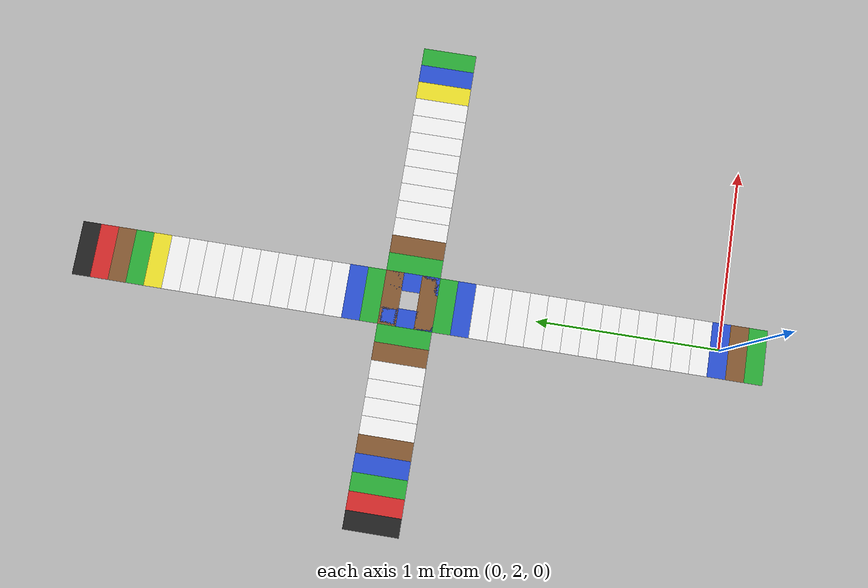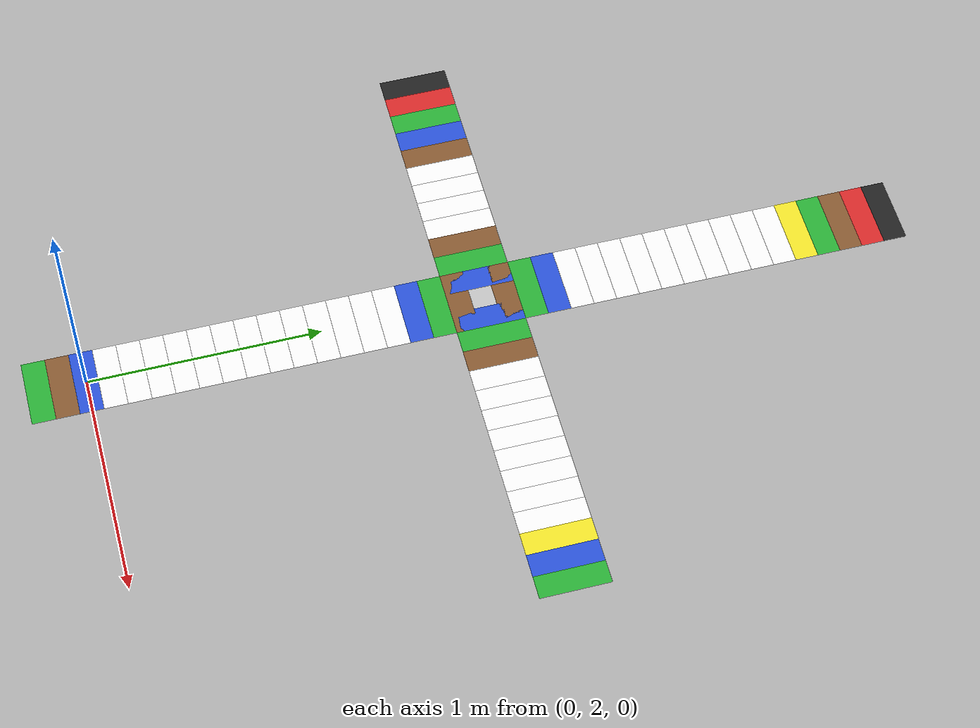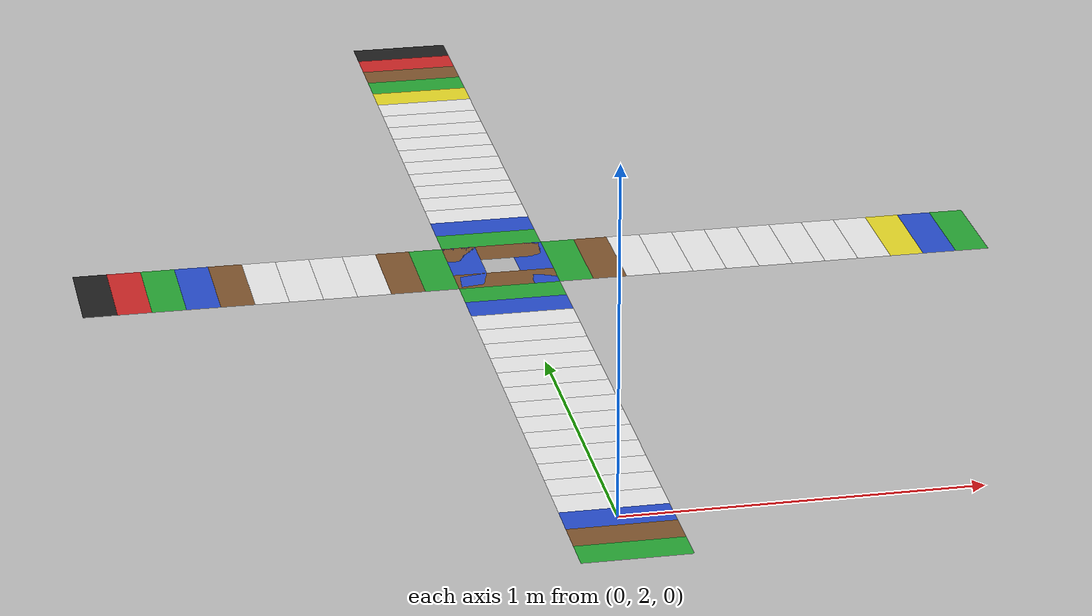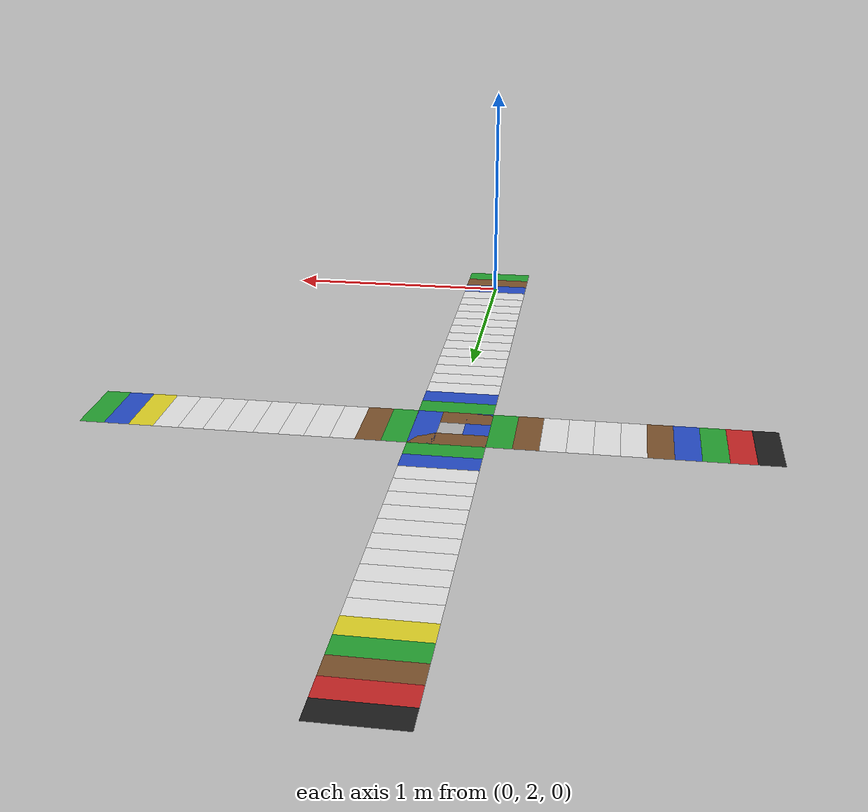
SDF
<sdf version="1.4">
 <world name="maskor_ev3_challenge">
  <model name="tileAC21">
   <pose>0 1.8 0.001 0 -0 0</pose>
   <static>1</static>
   <link name="link">
    <pose>0 0 0.001 0 -0 0</pose>
    <visual name="visual">
     <geometry><mesh><uri>model://maskor_ev3_tile/meshes/ev3_tile.dae</uri><scale>5 5 5</scale></mesh></geometry>
     <material>
      <script>
       <uri>model://maskor_ev3_tile/materials/scripts</uri>
       <uri>model://maskor_ev3_tile/materials/textures</uri>
       <name>green</name>
      </script>
     </material>
    </visual>
    <velocity_decay><linear>0</linear><angular>0</angular></velocity_decay>
   </link>
  </model>
  <model name="tileAC22">
   <pose>0 1.9 0.001 0 -0 0</pose>
   <static>1</static>
   <link name="link">
    <pose>0 0 0.001 0 -0 0</pose>
    <visual name="visual">
     <geometry><mesh><uri>model://maskor_ev3_tile/meshes/ev3_tile.dae</uri><scale>5 5 5</scale></mesh></geometry>
     <material>
      <script>
       <uri>model://maskor_ev3_tile/materials/scripts</uri>
       <uri>model://maskor_ev3_tile/materials/textures</uri>
       <name>brown</name>
      </script>
     </material>
    </visual>
    <velocity_decay><linear>0</linear><angular>0</angular></velocity_decay>
   </link>
  </model>
  <model name="tileAC23">
   <pose>0 2 0.001 0 -0 0</pose>
   <static>1</static>
   <link name="link">
    <pose>0 0 0.001 0 -0 0</pose>
    <visual name="visual">
     <geometry><mesh><uri>model://maskor_ev3_tile/meshes/ev3_tile.dae</uri><scale>5 5 5</scale></mesh></geometry>
     <material>
      <script>
       <uri>model://maskor_ev3_tile/materials/scripts</uri>
       <uri>model://maskor_ev3_tile/materials/textures</uri>
       <name>blue</name>
      </script>
     </material>
    </visual>
    <velocity_decay><linear>0</linear><angular>0</angular></velocity_decay>
   </link>
  </model>
  <model name="tileAC24">
   <pose>0 2.1 0.001 0 -0 0</pose>
   <static>1</static>
   <link name="link">
    <pose>0 0 0.001 0 -0 0</pose>
    <visual name="visual">
     <geometry><mesh><uri>model://maskor_ev3_tile/meshes/ev3_tile.dae</uri><scale>5 5 5</scale></mesh></geometry>
     <material>
      <script>
       <uri>model://maskor_ev3_tile/materials/scripts</uri>
       <uri>model://maskor_ev3_tile/materials/textures</uri>
       <name>white</name>
      </script>
     </material>
    </visual>
    <velocity_decay><linear>0</linear><angular>0</angular></velocity_decay>
   </link>
  </model>
  <model name="tileAC25">
   <pose>0 2.2 0.001 0 -0 0</pose>
   <static>1</static>
   <link name="link">
    <pose>0 0 0.001 0 -0 0</pose>
    <visual name="visual">
     <geometry><mesh><uri>model://maskor_ev3_tile/meshes/ev3_tile.dae</uri><scale>5 5 5</scale></mesh></geometry>
     <material>
      <script>
       <uri>model://maskor_ev3_tile/materials/scripts</uri>
       <uri>model://maskor_ev3_tile/materials/textures</uri>
       <name>white</name>
      </script>
     </material>
    </visual>
    <velocity_decay><linear>0</linear><angular>0</angular></velocity_decay>
   </link>
  </model>
  <model name="tileAC26">
   <pose>0 2.3 0.001 0 -0 0</pose>
   <static>1</static>
   <link name="link">
    <pose>0 0 0.001 0 -0 0</pose>
    <visual name="visual">
     <geometry><mesh><uri>model://maskor_ev3_tile/meshes/ev3_tile.dae</uri><scale>5 5 5</scale></mesh></geometry>
     <material>
      <script>
       <uri>model://maskor_ev3_tile/materials/scripts</uri>
       <uri>model://maskor_ev3_tile/materials/textures</uri>
       <name>white</name>
      </script>
     </material>
    </visual>
    <velocity_decay><linear>0</linear><angular>0</angular></velocity_decay>
   </link>
  </model>
  <model name="tileAC27">
   <pose>0 2.4 0.001 0 -0 0</pose>
   <static>1</static>
   <link name="link">
    <pose>0 0 0.001 0 -0 0</pose>
    <visual name="visual">
     <geometry><mesh><uri>model://maskor_ev3_tile/meshes/ev3_tile.dae</uri><scale>5 5 5</scale></mesh></geometry>
     <material>
      <script>
       <uri>model://maskor_ev3_tile/materials/scripts</uri>
       <uri>model://maskor_ev3_tile/materials/textures</uri>
       <name>white</name>
      </script>
     </material>
    </visual>
    <velocity_decay><linear>0</linear><angular>0</angular></velocity_decay>
   </link>
  </model>
  <model name="tileAC34">
   <pose>0 3.1 0.001 0 -0 0</pose>
   <static>1</static>
   <link name="link">
    <pose>0 0 0.001 0 -0 0</pose>
    <visual name="visual">
     <geometry><mesh><uri>model://maskor_ev3_tile/meshes/ev3_tile.dae</uri><scale>5 5 5</scale></mesh></geometry>
     <material>
      <script>
       <uri>model://maskor_ev3_tile/materials/scripts</uri>
       <uri>model://maskor_ev3_tile/materials/textures</uri>
       <name>white</name>
      </script>
     </material>
    </visual>
    <velocity_decay><linear>0</linear><angular>0</angular></velocity_decay>
   </link>
  </model>
  <model name="tileAC28">
   <pose>0 2.5 0.001 0 -0 0</pose>
   <static>1</static>
   <link name="link">
    <pose>0 0 0.001 0 -0 0</pose>
    <visual name="visual">
     <geometry><mesh><uri>model://maskor_ev3_tile/meshes/ev3_tile.dae</uri><scale>5 5 5</scale></mesh></geometry>
     <material>
      <script>
       <uri>model://maskor_ev3_tile/materials/scripts</uri>
       <uri>model://maskor_ev3_tile/materials/textures</uri>
       <name>white</name>
      </script>
     </material>
    </visual>
    <velocity_decay><linear>0</linear><angular>0</angular></velocity_decay>
   </link>
  </model>
  <model name="tileAC29">
   <pose>0 2.6 0.001 0 -0 0</pose>
   <static>1</static>
   <link name="link">
    <pose>0 0 0.001 0 -0 0</pose>
    <visual name="visual">
     <geometry><mesh><uri>model://maskor_ev3_tile/meshes/ev3_tile.dae</uri><scale>5 5 5</scale></mesh></geometry>
     <material>
      <script>
       <uri>model://maskor_ev3_tile/materials/scripts</uri>
       <uri>model://maskor_ev3_tile/materials/textures</uri>
       <name>white</name>
      </script>
     </material>
    </visual>
    <velocity_decay><linear>0</linear><angular>0</angular></velocity_decay>
   </link>
  </model>
  <model name="tileAC30">
   <pose>0 2.7 0.001 0 -0 0</pose>
   <static>1</static>
   <link name="link">
    <pose>0 0 0.001 0 -0 0</pose>
    <visual name="visual">
     <geometry><mesh><uri>model://maskor_ev3_tile/meshes/ev3_tile.dae</uri><scale>5 5 5</scale></mesh></geometry>
     <material>
      <script>
       <uri>model://maskor_ev3_tile/materials/scripts</uri>
       <uri>model://maskor_ev3_tile/materials/textures</uri>
       <name>white</name>
      </script>
     </material>
    </visual>
    <velocity_decay><linear>0</linear><angular>0</angular></velocity_decay>
   </link>
  </model>
  <model name="tileAC31">
   <pose>0 2.8 0.001 0 -0 0</pose>
   <static>1</static>
   <link name="link">
    <pose>0 0 0.001 0 -0 0</pose>
    <visual name="visual">
     <geometry><mesh><uri>model://maskor_ev3_tile/meshes/ev3_tile.dae</uri><scale>5 5 5</scale></mesh></geometry>
     <material>
      <script>
       <uri>model://maskor_ev3_tile/materials/scripts</uri>
       <uri>model://maskor_ev3_tile/materials/textures</uri>
       <name>white</name>
      </script>
     </material>
    </visual>
    <velocity_decay><linear>0</linear><angular>0</angular></velocity_decay>
   </link>
  </model>
  <model name="tileAC32">
   <pose>0 2.9 0.001 0 -0 0</pose>
   <static>1</static>
   <link name="link">
    <pose>0 0 0.001 0 -0 0</pose>
    <visual name="visual">
     <geometry><mesh><uri>model://maskor_ev3_tile/meshes/ev3_tile.dae</uri><scale>5 5 5</scale></mesh></geometry>
     <material>
      <script>
       <uri>model://maskor_ev3_tile/materials/scripts</uri>
       <uri>model://maskor_ev3_tile/materials/textures</uri>
       <name>white</name>
      </script>
     </material>
    </visual>
    <velocity_decay><linear>0</linear><angular>0</angular></velocity_decay>
   </link>
  </model>
  <model name="tileAC33">
   <pose>0 3 0.001 0 -0 0</pose>
   <static>1</static>
   <link name="link">
    <pose>0 0 0.001 0 -0 0</pose>
    <visual name="visual">
     <geometry><mesh><uri>model://maskor_ev3_tile/meshes/ev3_tile.dae</uri><scale>5 5 5</scale></mesh></geometry>
     <material>
      <script>
       <uri>model://maskor_ev3_tile/materials/scripts</uri>
       <uri>model://maskor_ev3_tile/materials/textures</uri>
       <name>white</name>
      </script>
     </material>
    </visual>
    <velocity_decay><linear>0</linear><angular>0</angular></velocity_decay>
   </link>
  </model>
  <model name="tileAC35">
   <pose>0 3.2 0.001 0 -0 0</pose>
   <static>1</static>
   <link name="link">
    <pose>0 0 0.001 0 -0 0</pose>
    <visual name="visual">
     <geometry><mesh><uri>model://maskor_ev3_tile/meshes/ev3_tile.dae</uri><scale>5 5 5</scale></mesh></geometry>
     <material>
      <script>
       <uri>model://maskor_ev3_tile/materials/scripts</uri>
       <uri>model://maskor_ev3_tile/materials/textures</uri>
       <name>white</name>
      </script>
     </material>
    </visual>
    <velocity_decay><linear>0</linear><angular>0</angular></velocity_decay>
   </link>
  </model>
  <model name="tileAC36">
   <pose>0 3.3 0.001 0 -0 0</pose>
   <static>1</static>
   <link name="link">
    <pose>0 0 0.001 0 -0 0</pose>
    <visual name="visual">
     <geometry><mesh><uri>model://maskor_ev3_tile/meshes/ev3_tile.dae</uri><scale>5 5 5</scale></mesh></geometry>
     <material>
      <script>
       <uri>model://maskor_ev3_tile/materials/scripts</uri>
       <uri>model://maskor_ev3_tile/materials/textures</uri>
       <name>white</name>
      </script>
     </material>
    </visual>
    <velocity_decay><linear>0</linear><angular>0</angular></velocity_decay>
   </link>
  </model>
  <model name="tileAC37">
   <pose>0 3.4 0.001 0 -0 0</pose>
   <static>1</static>
   <link name="link">
    <pose>0 0 0.001 0 -0 0</pose>
    <visual name="visual">
     <geometry><mesh><uri>model://maskor_ev3_tile/meshes/ev3_tile.dae</uri><scale>5 5 5</scale></mesh></geometry>
     <material>
      <script>
       <uri>model://maskor_ev3_tile/materials/scripts</uri>
       <uri>model://maskor_ev3_tile/materials/textures</uri>
       <name>blue</name>
      </script>
     </material>
    </visual>
    <velocity_decay><linear>0</linear><angular>0</angular></velocity_decay>
   </link>
  </model>
  <model name="tileAC38">
   <pose>0 3.5 0.001 0 -0 0</pose>
   <static>1</static>
   <link name="link">
    <pose>0 0 0.001 0 -0 0</pose>
    <visual name="visual">
     <geometry><mesh><uri>model://maskor_ev3_tile/meshes/ev3_tile.dae</uri><scale>5 5 5</scale></mesh></geometry>
     <material>
      <script>
       <uri>model://maskor_ev3_tile/materials/scripts</uri>
       <uri>model://maskor_ev3_tile/materials/textures</uri>
       <name>green</name>
      </script>
     </material>
    </visual>
    <velocity_decay><linear>0</linear><angular>0</angular></velocity_decay>
   </link>
  </model>
  <model name="tileAC39">
   <pose>0 3.6 0.001 0 -0 0</pose>
   <static>1</static>
   <link name="link">
    <pose>0 0 0.001 0 -0 0</pose>
    <visual name="visual">
     <geometry><mesh><uri>model://maskor_ev3_tile/meshes/ev3_tile.dae</uri><scale>5 5 5</scale></mesh></geometry>
     <material>
      <script>
       <uri>model://maskor_ev3_tile/materials/scripts</uri>
       <uri>model://maskor_ev3_tile/materials/textures</uri>
       <name>brown</name>
      </script>
     </material>
    </visual>
    <velocity_decay><linear>0</linear><angular>0</angular></velocity_decay>
   </link>
  </model>
  <model name="tileAC40">
   <pose>0 3.7 0.002 0 -0 0</pose>
   <static>1</static>
   <link name="link">
    <visual name="visual">
     <geometry>
      <mesh><uri>model://maskor_ev3_tile_center/meshes/ev3_tile_center.dae</uri><scale>5 5 5</scale></mesh>
     </geometry>
     <material>
      <script>
       <uri>model://maskor_ev3_tile_center/materials/scripts</uri>
       <uri>model://maskor_ev3_tile_center/materials/textures</uri>
       <name>center</name>
      </script>
     </material>
    </visual>
    <velocity_decay><linear>0</linear><angular>0</angular></velocity_decay>
   </link>
  </model>
  <model name="tileAC41">
   <pose>0 3.8 0.001 0 -0 0</pose>
   <static>1</static>
   <link name="link">
    <pose>0 0 0.001 0 -0 0</pose>
    <visual name="visual">
     <geometry><mesh><uri>model://maskor_ev3_tile/meshes/ev3_tile.dae</uri><scale>5 5 5</scale></mesh></geometry>
     <material>
      <script>
       <uri>model://maskor_ev3_tile/materials/scripts</uri>
       <uri>model://maskor_ev3_tile/materials/textures</uri>
       <name>brown</name>
      </script>
     </material>
    </visual>
    <velocity_decay><linear>0</linear><angular>0</angular></velocity_decay>
   </link>
  </model>
  <model name="tileAC42">
   <pose>0 3.9 0.001 0 -0 0</pose>
   <static>1</static>
   <link name="link">
    <pose>0 0 0.001 0 -0 0</pose>
    <visual name="visual">
     <geometry><mesh><uri>model://maskor_ev3_tile/meshes/ev3_tile.dae</uri><scale>5 5 5</scale></mesh></geometry>
     <material>
      <script>
       <uri>model://maskor_ev3_tile/materials/scripts</uri>
       <uri>model://maskor_ev3_tile/materials/textures</uri>
       <name>green</name>
      </script>
     </material>
    </visual>
    <velocity_decay><linear>0</linear><angular>0</angular></velocity_decay>
   </link>
  </model>
  <model name="tileAC43">
   <pose>0 4 0.001 0 -0 0</pose>
   <static>1</static>
   <link name="link">
    <pose>0 0 0.001 0 -0 0</pose>
    <visual name="visual">
     <geometry><mesh><uri>model://maskor_ev3_tile/meshes/ev3_tile.dae</uri><scale>5 5 5</scale></mesh></geometry>
     <material>
      <script>
       <uri>model://maskor_ev3_tile/materials/scripts</uri>
       <uri>model://maskor_ev3_tile/materials/textures</uri>
       <name>blue</name>
      </script>
     </material>
    </visual>
    <velocity_decay><linear>0</linear><angular>0</angular></velocity_decay>
   </link>
  </model>
  <model name="tileAC44">
   <pose>0 4.1 0.001 0 -0 0</pose>
   <static>1</static>
   <link name="link">
    <pose>0 0 0.001 0 -0 0</pose>
    <visual name="visual">
     <geometry><mesh><uri>model://maskor_ev3_tile/meshes/ev3_tile.dae</uri><scale>5 5 5</scale></mesh></geometry>
     <material>
      <script>
       <uri>model://maskor_ev3_tile/materials/scripts</uri>
       <uri>model://maskor_ev3_tile/materials/textures</uri>
       <name>white</name>
      </script>
     </material>
    </visual>
    <velocity_decay><linear>0</linear><angular>0</angular></velocity_decay>
   </link>
  </model>
  <model name="tileAC45">
   <pose>0 4.2 0.001 0 -0 0</pose>
   <static>1</static>
   <link name="link">
    <pose>0 0 0.001 0 -0 0</pose>
    <visual name="visual">
     <geometry><mesh><uri>model://maskor_ev3_tile/meshes/ev3_tile.dae</uri><scale>5 5 5</scale></mesh></geometry>
     <material>
      <script>
       <uri>model://maskor_ev3_tile/materials/scripts</uri>
       <uri>model://maskor_ev3_tile/materials/textures</uri>
       <name>white</name>
      </script>
     </material>
    </visual>
    <velocity_decay><linear>0</linear><angular>0</angular></velocity_decay>
   </link>
  </model>
  <model name="tileAC46">
   <pose>0 4.3 0.001 0 -0 0</pose>
   <static>1</static>
   <link name="link">
    <pose>0 0 0.001 0 -0 0</pose>
    <visual name="visual">
     <geometry><mesh><uri>model://maskor_ev3_tile/meshes/ev3_tile.dae</uri><scale>5 5 5</scale></mesh></geometry>
     <material>
      <script>
       <uri>model://maskor_ev3_tile/materials/scripts</uri>
       <uri>model://maskor_ev3_tile/materials/textures</uri>
       <name>white</name>
      </script>
     </material>
    </visual>
    <velocity_decay><linear>0</linear><angular>0</angular></velocity_decay>
   </link>
  </model>
  <model name="tileAC53">
   <pose>0 5 0.001 0 -0 0</pose>
   <static>1</static>
   <link name="link">
    <pose>0 0 0.001 0 -0 0</pose>
    <visual name="visual">
     <geometry><mesh><uri>model://maskor_ev3_tile/meshes/ev3_tile.dae</uri><scale>5 5 5</scale></mesh></geometry>
     <material>
      <script>
       <uri>model://maskor_ev3_tile/materials/scripts</uri>
       <uri>model://maskor_ev3_tile/materials/textures</uri>
       <name>white</name>
      </script>
     </material>
    </visual>
    <velocity_decay><linear>0</linear><angular>0</angular></velocity_decay>
   </link>
  </model>
  <model name="tileAC47">
   <pose>0 4.4 0.001 0 -0 0</pose>
   <static>1</static>
   <link name="link">
    <pose>0 0 0.001 0 -0 0</pose>
    <visual name="visual">
     <geometry><mesh><uri>model://maskor_ev3_tile/meshes/ev3_tile.dae</uri><scale>5 5 5</scale></mesh></geometry>
     <material>
      <script>
       <uri>model://maskor_ev3_tile/materials/scripts</uri>
       <uri>model://maskor_ev3_tile/materials/textures</uri>
       <name>white</name>
      </script>
     </material>
    </visual>
    <velocity_decay><linear>0</linear><angular>0</angular></velocity_decay>
   </link>
  </model>
  <model name="tileAC48">
   <pose>0 4.5 0.001 0 -0 0</pose>
   <static>1</static>
   <link name="link">
    <pose>0 0 0.001 0 -0 0</pose>
    <visual name="visual">
     <geometry><mesh><uri>model://maskor_ev3_tile/meshes/ev3_tile.dae</uri><scale>5 5 5</scale></mesh></geometry>
     <material>
      <script>
       <uri>model://maskor_ev3_tile/materials/scripts</uri>
       <uri>model://maskor_ev3_tile/materials/textures</uri>
       <name>white</name>
      </script>
     </material>
    </visual>
    <velocity_decay><linear>0</linear><angular>0</angular></velocity_decay>
   </link>
  </model>
  <model name="tileAC49">
   <pose>0 4.6 0.001 0 -0 0</pose>
   <static>1</static>
   <link name="link">
    <pose>0 0 0.001 0 -0 0</pose>
    <visual name="visual">
     <geometry><mesh><uri>model://maskor_ev3_tile/meshes/ev3_tile.dae</uri><scale>5 5 5</scale></mesh></geometry>
     <material>
      <script>
       <uri>model://maskor_ev3_tile/materials/scripts</uri>
       <uri>model://maskor_ev3_tile/materials/textures</uri>
       <name>white</name>
      </script>
     </material>
    </visual>
    <velocity_decay><linear>0</linear><angular>0</angular></velocity_decay>
   </link>
  </model>
  <model name="tileAC50">
   <pose>0 4.7 0.001 0 -0 0</pose>
   <static>1</static>
   <link name="link">
    <pose>0 0 0.001 0 -0 0</pose>
    <visual name="visual">
     <geometry><mesh><uri>model://maskor_ev3_tile/meshes/ev3_tile.dae</uri><scale>5 5 5</scale></mesh></geometry>
     <material>
      <script>
       <uri>model://maskor_ev3_tile/materials/scripts</uri>
       <uri>model://maskor_ev3_tile/materials/textures</uri>
       <name>white</name>
      </script>
     </material>
    </visual>
    <velocity_decay><linear>0</linear><angular>0</angular></velocity_decay>
   </link>
  </model>
  <model name="tileAC51">
   <pose>0 4.8 0.001 0 -0 0</pose>
   <static>1</static>
   <link name="link">
    <pose>0 0 0.001 0 -0 0</pose>
    <visual name="visual">
     <geometry><mesh><uri>model://maskor_ev3_tile/meshes/ev3_tile.dae</uri><scale>5 5 5</scale></mesh></geometry>
     <material>
      <script>
       <uri>model://maskor_ev3_tile/materials/scripts</uri>
       <uri>model://maskor_ev3_tile/materials/textures</uri>
       <name>white</name>
      </script>
     </material>
    </visual>
    <velocity_decay><linear>0</linear><angular>0</angular></velocity_decay>
   </link>
  </model>
  <model name="tileAC52">
   <pose>0 4.9 0.001 0 -0 0</pose>
   <static>1</static>
   <link name="link">
    <pose>0 0 0.001 0 -0 0</pose>
    <visual name="visual">
     <geometry><mesh><uri>model://maskor_ev3_tile/meshes/ev3_tile.dae</uri><scale>5 5 5</scale></mesh></geometry>
     <material>
      <script>
       <uri>model://maskor_ev3_tile/materials/scripts</uri>
       <uri>model://maskor_ev3_tile/materials/textures</uri>
       <name>white</name>
      </script>
     </material>
    </visual>
    <velocity_decay><linear>0</linear><angular>0</angular></velocity_decay>
   </link>
  </model>
  <model name="tileAC54">
   <pose>0 5.1 0.001 0 -0 0</pose>
   <static>1</static>
   <link name="link">
    <pose>0 0 0.001 0 -0 0</pose>
    <visual name="visual">
     <geometry><mesh><uri>model://maskor_ev3_tile/meshes/ev3_tile.dae</uri><scale>5 5 5</scale></mesh></geometry>
     <material>
      <script>
       <uri>model://maskor_ev3_tile/materials/scripts</uri>
       <uri>model://maskor_ev3_tile/materials/textures</uri>
       <name>yellow</name>
      </script>
     </material>
    </visual>
    <velocity_decay><linear>0</linear><angular>0</angular></velocity_decay>
   </link>
  </model>
  <model name="tileAC55">
   <pose>0 5.2 0.001 0 -0 0</pose>
   <static>1</static>
   <link name="link">
    <pose>0 0 0.001 0 -0 0</pose>
    <visual name="visual">
     <geometry><mesh><uri>model://maskor_ev3_tile/meshes/ev3_tile.dae</uri><scale>5 5 5</scale></mesh></geometry>
     <material>
      <script>
       <uri>model://maskor_ev3_tile/materials/scripts</uri>
       <uri>model://maskor_ev3_tile/materials/textures</uri>
       <name>green</name>
      </script>
     </material>
    </visual>
    <velocity_decay><linear>0</linear><angular>0</angular></velocity_decay>
   </link>
  </model>
  <model name="tileAC56">
   <pose>0 5.3 0.001 0 -0 0</pose>
   <static>1</static>
   <link name="link">
    <pose>0 0 0.001 0 -0 0</pose>
    <visual name="visual">
     <geometry><mesh><uri>model://maskor_ev3_tile/meshes/ev3_tile.dae</uri><scale>5 5 5</scale></mesh></geometry>
     <material>
      <script>
       <uri>model://maskor_ev3_tile/materials/scripts</uri>
       <uri>model://maskor_ev3_tile/materials/textures</uri>
       <name>brown</name>
      </script>
     </material>
    </visual>
    <velocity_decay><linear>0</linear><angular>0</angular></velocity_decay>
   </link>
  </model>
  <model name="tileAC57">
   <pose>0 5.4 0.001 0 -0 0</pose>
   <static>1</static>
   <link name="link">
    <pose>0 0 0.001 0 -0 0</pose>
    <visual name="visual">
     <geometry><mesh><uri>model://maskor_ev3_tile/meshes/ev3_tile.dae</uri><scale>5 5 5</scale></mesh></geometry>
     <material>
      <script>
       <uri>model://maskor_ev3_tile/materials/scripts</uri>
       <uri>model://maskor_ev3_tile/materials/textures</uri>
       <name>red</name>
      </script>
     </material>
    </visual>
    <velocity_decay><linear>0</linear><angular>0</angular></velocity_decay>
   </link>
  </model>
  <model name="tileAC58">
   <pose>0 5.5 0.001 0 -0 0</pose>
   <static>1</static>
   <link name="link">
    <pose>0 0 0.001 0 -0 0</pose>
    <visual name="visual">
     <geometry><mesh><uri>model://maskor_ev3_tile/meshes/ev3_tile.dae</uri><scale>5 5 5</scale></mesh></geometry>
     <material>
      <script>
       <uri>model://maskor_ev3_tile/materials/scripts</uri>
       <uri>model://maskor_ev3_tile/materials/textures</uri>
       <name>black</name>
      </script>
     </material>
    </visual>
    <velocity_decay><linear>0</linear><angular>0</angular></velocity_decay>
   </link>
  </model>
  <model name="tileGH3">
   <pose>-1.2 3.7 0.001 0 -0 1.5708</pose>
   <static>1</static>
   <link name="link">
    <pose>0 0 0.001 0 -0 0</pose>
    <visual name="visual">
     <geometry><mesh><uri>model://maskor_ev3_tile/meshes/ev3_tile.dae</uri><scale>5 5 5</scale></mesh></geometry>
     <material>
      <script>
       <uri>model://maskor_ev3_tile/materials/scripts</uri>
       <uri>model://maskor_ev3_tile/materials/textures</uri>
       <name>black</name>
      </script>
     </material>
    </visual>
    <velocity_decay><linear>0</linear><angular>0</angular></velocity_decay>
   </link>
  </model>
  <model name="tileGH4">
   <pose>-1.1 3.7 0.001 0 -0 1.5708</pose>
   <static>1</static>
   <link name="link">
    <pose>0 0 0.001 0 -0 0</pose>
    <visual name="visual">
     <geometry><mesh><uri>model://maskor_ev3_tile/meshes/ev3_tile.dae</uri><scale>5 5 5</scale></mesh></geometry>
     <material>
      <script>
       <uri>model://maskor_ev3_tile/materials/scripts</uri>
       <uri>model://maskor_ev3_tile/materials/textures</uri>
       <name>red</name>
      </script>
     </material>
    </visual>
    <velocity_decay><linear>0</linear><angular>0</angular></velocity_decay>
   </link>
  </model>
  <model name="tileGH5">
   <pose>-1 3.7 0.001 0 -0 1.5708</pose>
   <static>1</static>
   <link name="link">
    <pose>0 0 0.001 0 -0 0</pose>
    <visual name="visual">
     <geometry><mesh><uri>model://maskor_ev3_tile/meshes/ev3_tile.dae</uri><scale>5 5 5</scale></mesh></geometry>
     <material>
      <script>
       <uri>model://maskor_ev3_tile/materials/scripts</uri>
       <uri>model://maskor_ev3_tile/materials/textures</uri>
       <name>green</name>
      </script>
     </material>
    </visual>
    <velocity_decay><linear>0</linear><angular>0</angular></velocity_decay>
   </link>
  </model>
  <model name="tileGH6">
   <pose>-0.9 3.7 0.001 0 -0 1.5708</pose>
   <static>1</static>
   <link name="link">
    <pose>0 0 0.001 0 -0 0</pose>
    <visual name="visual">
     <geometry><mesh><uri>model://maskor_ev3_tile/meshes/ev3_tile.dae</uri><scale>5 5 5</scale></mesh></geometry>
     <material>
      <script>
       <uri>model://maskor_ev3_tile/materials/scripts</uri>
       <uri>model://maskor_ev3_tile/materials/textures</uri>
       <name>blue</name>
      </script>
     </material>
    </visual>
    <velocity_decay><linear>0</linear><angular>0</angular></velocity_decay>
   </link>
  </model>
  <model name="tileGH7">
   <pose>-0.8 3.7 0.001 0 -0 1.5708</pose>
   <static>1</static>
   <link name="link">
    <pose>0 0 0.001 0 -0 0</pose>
    <visual name="visual">
     <geometry><mesh><uri>model://maskor_ev3_tile/meshes/ev3_tile.dae</uri><scale>5 5 5</scale></mesh></geometry>
     <material>
      <script>
       <uri>model://maskor_ev3_tile/materials/scripts</uri>
       <uri>model://maskor_ev3_tile/materials/textures</uri>
       <name>brown</name>
      </script>
     </material>
    </visual>
    <velocity_decay><linear>0</linear><angular>0</angular></velocity_decay>
   </link>
  </model>
  <model name="tileGH8">
   <pose>-0.7 3.7 0.001 0 -0 1.5708</pose>
   <static>1</static>
   <link name="link">
    <pose>0 0 0.001 0 -0 0</pose>
    <visual name="visual">
     <geometry><mesh><uri>model://maskor_ev3_tile/meshes/ev3_tile.dae</uri><scale>5 5 5</scale></mesh></geometry>
     <material>
      <script>
       <uri>model://maskor_ev3_tile/materials/scripts</uri>
       <uri>model://maskor_ev3_tile/materials/textures</uri>
       <name>white</name>
      </script>
     </material>
    </visual>
    <velocity_decay><linear>0</linear><angular>0</angular></velocity_decay>
   </link>
  </model>
  <model name="tileGH13">
   <pose>-0.2 3.7 0.001 0 -0 1.5708</pose>
   <static>1</static>
   <link name="link">
    <pose>0 0 0.001 0 -0 0</pose>
    <visual name="visual">
     <geometry><mesh><uri>model://maskor_ev3_tile/meshes/ev3_tile.dae</uri><scale>5 5 5</scale></mesh></geometry>
     <material>
      <script>
       <uri>model://maskor_ev3_tile/materials/scripts</uri>
       <uri>model://maskor_ev3_tile/materials/textures</uri>
       <name>green</name>
      </script>
     </material>
    </visual>
    <velocity_decay><linear>0</linear><angular>0</angular></velocity_decay>
   </link>
  </model>
  <model name="tileGH9">
   <pose>-0.6 3.7 0.001 0 -0 1.5708</pose>
   <static>1</static>
   <link name="link">
    <pose>0 0 0.001 0 -0 0</pose>
    <visual name="visual">
     <geometry><mesh><uri>model://maskor_ev3_tile/meshes/ev3_tile.dae</uri><scale>5 5 5</scale></mesh></geometry>
     <material>
      <script>
       <uri>model://maskor_ev3_tile/materials/scripts</uri>
       <uri>model://maskor_ev3_tile/materials/textures</uri>
       <name>white</name>
      </script>
     </material>
    </visual>
    <velocity_decay><linear>0</linear><angular>0</angular></velocity_decay>
   </link>
  </model>
  <model name="tileGH10">
   <pose>-0.5 3.7 0.001 0 -0 1.5708</pose>
   <static>1</static>
   <link name="link">
    <pose>0 0 0.001 0 -0 0</pose>
    <visual name="visual">
     <geometry><mesh><uri>model://maskor_ev3_tile/meshes/ev3_tile.dae</uri><scale>5 5 5</scale></mesh></geometry>
     <material>
      <script>
       <uri>model://maskor_ev3_tile/materials/scripts</uri>
       <uri>model://maskor_ev3_tile/materials/textures</uri>
       <name>white</name>
      </script>
     </material>
    </visual>
    <velocity_decay><linear>0</linear><angular>0</angular></velocity_decay>
   </link>
  </model>
  <model name="tileGH11">
   <pose>-0.4 3.7 0.001 0 -0 1.5708</pose>
   <static>1</static>
   <link name="link">
    <pose>0 0 0.001 0 -0 0</pose>
    <visual name="visual">
     <geometry><mesh><uri>model://maskor_ev3_tile/meshes/ev3_tile.dae</uri><scale>5 5 5</scale></mesh></geometry>
     <material>
      <script>
       <uri>model://maskor_ev3_tile/materials/scripts</uri>
       <uri>model://maskor_ev3_tile/materials/textures</uri>
       <name>white</name>
      </script>
     </material>
    </visual>
    <velocity_decay><linear>0</linear><angular>0</angular></velocity_decay>
   </link>
  </model>
  <model name="tileGH12">
   <pose>-0.3 3.7 0.001 0 -0 1.5708</pose>
   <static>1</static>
   <link name="link">
    <pose>0 0 0.001 0 -0 0</pose>
    <visual name="visual">
     <geometry><mesh><uri>model://maskor_ev3_tile/meshes/ev3_tile.dae</uri><scale>5 5 5</scale></mesh></geometry>
     <material>
      <script>
       <uri>model://maskor_ev3_tile/materials/scripts</uri>
       <uri>model://maskor_ev3_tile/materials/textures</uri>
       <name>brown</name>
      </script>
     </material>
    </visual>
    <velocity_decay><linear>0</linear><angular>0</angular></velocity_decay>
   </link>
  </model>
  <model name="tileGH14">
   <pose>-0.1 3.7 0.001 0 -0 1.5708</pose>
   <static>1</static>
   <link name="link">
    <pose>0 0 0.001 0 -0 0</pose>
    <visual name="visual">
     <geometry><mesh><uri>model://maskor_ev3_tile/meshes/ev3_tile.dae</uri><scale>5 5 5</scale></mesh></geometry>
     <material>
      <script>
       <uri>model://maskor_ev3_tile/materials/scripts</uri>
       <uri>model://maskor_ev3_tile/materials/textures</uri>
       <name>blue</name>
      </script>
     </material>
    </visual>
    <velocity_decay><linear>0</linear><angular>0</angular></velocity_decay>
   </link>
  </model>
  <model name="tileGH16">
   <pose>0.1 3.7 0.001 0 -0 1.5708</pose>
   <static>1</static>
   <link name="link">
    <pose>0 0 0.001 0 -0 0</pose>
    <visual name="visual">
     <geometry><mesh><uri>model://maskor_ev3_tile/meshes/ev3_tile.dae</uri><scale>5 5 5</scale></mesh></geometry>
     <material>
      <script>
       <uri>model://maskor_ev3_tile/materials/scripts</uri>
       <uri>model://maskor_ev3_tile/materials/textures</uri>
       <name>blue</name>
      </script>
     </material>
    </visual>
    <velocity_decay><linear>0</linear><angular>0</angular></velocity_decay>
   </link>
  </model>
  <model name="tileGH17">
   <pose>0.2 3.7 0.001 0 -0 1.5708</pose>
   <static>1</static>
   <link name="link">
    <pose>0 0 0.001 0 -0 0</pose>
    <visual name="visual">
     <geometry><mesh><uri>model://maskor_ev3_tile/meshes/ev3_tile.dae</uri><scale>5 5 5</scale></mesh></geometry>
     <material>
      <script>
       <uri>model://maskor_ev3_tile/materials/scripts</uri>
       <uri>model://maskor_ev3_tile/materials/textures</uri>
       <name>green</name>
      </script>
     </material>
    </visual>
    <velocity_decay><linear>0</linear><angular>0</angular></velocity_decay>
   </link>
  </model>
  <model name="tileGH18">
   <pose>0.3 3.7 0.001 0 -0 1.5708</pose>
   <static>1</static>
   <link name="link">
    <pose>0 0 0.001 0 -0 0</pose>
    <visual name="visual">
     <geometry><mesh><uri>model://maskor_ev3_tile/meshes/ev3_tile.dae</uri><scale>5 5 5</scale></mesh></geometry>
     <material>
      <script>
       <uri>model://maskor_ev3_tile/materials/scripts</uri>
       <uri>model://maskor_ev3_tile/materials/textures</uri>
       <name>brown</name>
      </script>
     </material>
    </visual>
    <velocity_decay><linear>0</linear><angular>0</angular></velocity_decay>
   </link>
  </model>
  <model name="tileGH19">
   <pose>0.4 3.7 0.001 0 -0 1.5708</pose>
   <static>1</static>
   <link name="link">
    <pose>0 0 0.001 0 -0 0</pose>
    <visual name="visual">
     <geometry><mesh><uri>model://maskor_ev3_tile/meshes/ev3_tile.dae</uri><scale>5 5 5</scale></mesh></geometry>
     <material>
      <script>
       <uri>model://maskor_ev3_tile/materials/scripts</uri>
       <uri>model://maskor_ev3_tile/materials/textures</uri>
       <name>white</name>
      </script>
     </material>
    </visual>
    <velocity_decay><linear>0</linear><angular>0</angular></velocity_decay>
   </link>
  </model>
  <model name="tileGH20">
   <pose>0.5 3.7 0.001 0 -0 1.5708</pose>
   <static>1</static>
   <link name="link">
    <pose>0 0 0.001 0 -0 0</pose>
    <visual name="visual">
     <geometry><mesh><uri>model://maskor_ev3_tile/meshes/ev3_tile.dae</uri><scale>5 5 5</scale></mesh></geometry>
     <material>
      <script>
       <uri>model://maskor_ev3_tile/materials/scripts</uri>
       <uri>model://maskor_ev3_tile/materials/textures</uri>
       <name>white</name>
      </script>
     </material>
    </visual>
    <velocity_decay><linear>0</linear><angular>0</angular></velocity_decay>
   </link>
  </model>
  <model name="tileGH21">
   <pose>0.6 3.7 0.001 0 -0 1.5708</pose>
   <static>1</static>
   <link name="link">
    <pose>0 0 0.001 0 -0 0</pose>
    <visual name="visual">
     <geometry><mesh><uri>model://maskor_ev3_tile/meshes/ev3_tile.dae</uri><scale>5 5 5</scale></mesh></geometry>
     <material>
      <script>
       <uri>model://maskor_ev3_tile/materials/scripts</uri>
       <uri>model://maskor_ev3_tile/materials/textures</uri>
       <name>white</name>
      </script>
     </material>
    </visual>
    <velocity_decay><linear>0</linear><angular>0</angular></velocity_decay>
   </link>
  </model>
  <model name="tileGH22">
   <pose>0.7 3.7 0.001 0 -0 1.5708</pose>
   <static>1</static>
   <link name="link">
    <pose>0 0 0.001 0 -0 0</pose>
    <visual name="visual">
     <geometry><mesh><uri>model://maskor_ev3_tile/meshes/ev3_tile.dae</uri><scale>5 5 5</scale></mesh></geometry>
     <material>
      <script>
       <uri>model://maskor_ev3_tile/materials/scripts</uri>
       <uri>model://maskor_ev3_tile/materials/textures</uri>
       <name>white</name>
      </script>
     </material>
    </visual>
    <velocity_decay><linear>0</linear><angular>0</angular></velocity_decay>
   </link>
  </model>
  <model name="tileGH23">
   <pose>0.8 3.7 0.001 0 -0 1.5708</pose>
   <static>1</static>
   <link name="link">
    <pose>0 0 0.001 0 -0 0</pose>
    <visual name="visual">
     <geometry><mesh><uri>model://maskor_ev3_tile/meshes/ev3_tile.dae</uri><scale>5 5 5</scale></mesh></geometry>
     <material>
      <script>
       <uri>model://maskor_ev3_tile/materials/scripts</uri>
       <uri>model://maskor_ev3_tile/materials/textures</uri>
       <name>white</name>
      </script>
     </material>
    </visual>
    <velocity_decay><linear>0</linear><angular>0</angular></velocity_decay>
   </link>
  </model>
  <model name="tileGH24">
   <pose>0.9 3.7 0.001 0 -0 1.5708</pose>
   <static>1</static>
   <link name="link">
    <pose>0 0 0.001 0 -0 0</pose>
    <visual name="visual">
     <geometry><mesh><uri>model://maskor_ev3_tile/meshes/ev3_tile.dae</uri><scale>5 5 5</scale></mesh></geometry>
     <material>
      <script>
       <uri>model://maskor_ev3_tile/materials/scripts</uri>
       <uri>model://maskor_ev3_tile/materials/textures</uri>
       <name>white</name>
      </script>
     </material>
    </visual>
    <velocity_decay><linear>0</linear><angular>0</angular></velocity_decay>
   </link>
  </model>
  <model name="tileGH25">
   <pose>1 3.7 0.001 0 -0 1.5708</pose>
   <static>1</static>
   <link name="link">
    <pose>0 0 0.001 0 -0 0</pose>
    <visual name="visual">
     <geometry><mesh><uri>model://maskor_ev3_tile/meshes/ev3_tile.dae</uri><scale>5 5 5</scale></mesh></geometry>
     <material>
      <script>
       <uri>model://maskor_ev3_tile/materials/scripts</uri>
       <uri>model://maskor_ev3_tile/materials/textures</uri>
       <name>white</name>
      </script>
     </material>
    </visual>
    <velocity_decay><linear>0</linear><angular>0</angular></velocity_decay>
   </link>
  </model>
  <model name="tileGH26">
   <pose>1.1 3.7 0.001 0 -0 1.5708</pose>
   <static>1</static>
   <link name="link">
    <pose>0 0 0.001 0 -0 0</pose>
    <visual name="visual">
     <geometry><mesh><uri>model://maskor_ev3_tile/meshes/ev3_tile.dae</uri><scale>5 5 5</scale></mesh></geometry>
     <material>
      <script>
       <uri>model://maskor_ev3_tile/materials/scripts</uri>
       <uri>model://maskor_ev3_tile/materials/textures</uri>
       <name>white</name>
      </script>
     </material>
    </visual>
    <velocity_decay><linear>0</linear><angular>0</angular></velocity_decay>
   </link>
  </model>
  <model name="tileGH27">
   <pose>1.2 3.7 0.001 0 -0 1.5708</pose>
   <static>1</static>
   <link name="link">
    <pose>0 0 0.001 0 -0 0</pose>
    <visual name="visual">
     <geometry><mesh><uri>model://maskor_ev3_tile/meshes/ev3_tile.dae</uri><scale>5 5 5</scale></mesh></geometry>
     <material>
      <script>
       <uri>model://maskor_ev3_tile/materials/scripts</uri>
       <uri>model://maskor_ev3_tile/materials/textures</uri>
       <name>yellow</name>
      </script>
     </material>
    </visual>
    <velocity_decay><linear>0</linear><angular>0</angular></velocity_decay>
   </link>
  </model>
  <model name="tileGH28">
   <pose>1.3 3.7 0.001 0 -0 1.5708</pose>
   <static>1</static>
   <link name="link">
    <pose>0 0 0.001 0 -0 0</pose>
    <visual name="visual">
     <geometry><mesh><uri>model://maskor_ev3_tile/meshes/ev3_tile.dae</uri><scale>5 5 5</scale></mesh></geometry>
     <material>
      <script>
       <uri>model://maskor_ev3_tile/materials/scripts</uri>
       <uri>model://maskor_ev3_tile/materials/textures</uri>
       <name>blue</name>
      </script>
     </material>
    </visual>
    <velocity_decay><linear>0</linear><angular>0</angular></velocity_decay>
   </link>
  </model>
  <model name="tileGH29">
   <pose>1.4 3.7 0.001 0 -0 1.5708</pose>
   <static>1</static>
   <link name="link">
    <pose>0 0 0.001 0 -0 0</pose>
    <visual name="visual">
     <geometry><mesh><uri>model://maskor_ev3_tile/meshes/ev3_tile.dae</uri><scale>5 5 5</scale></mesh></geometry>
     <material>
      <script>
       <uri>model://maskor_ev3_tile/materials/scripts</uri>
       <uri>model://maskor_ev3_tile/materials/textures</uri>
       <name>green</name>
      </script>
     </material>
    </visual>
    <velocity_decay><linear>0</linear><angular>0</angular></velocity_decay>
   </link>
  </model>
 </world>
</sdf>
